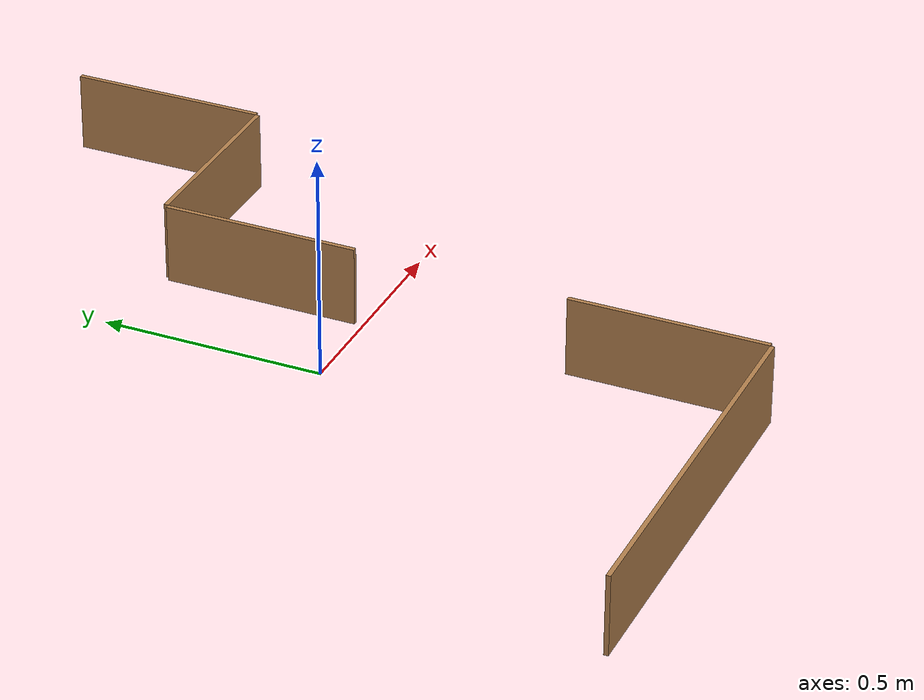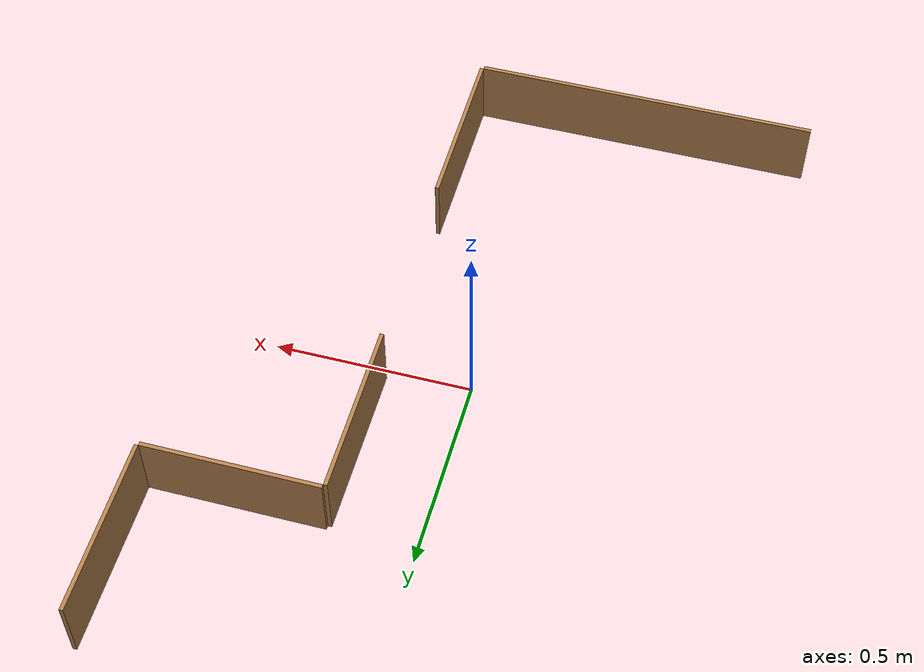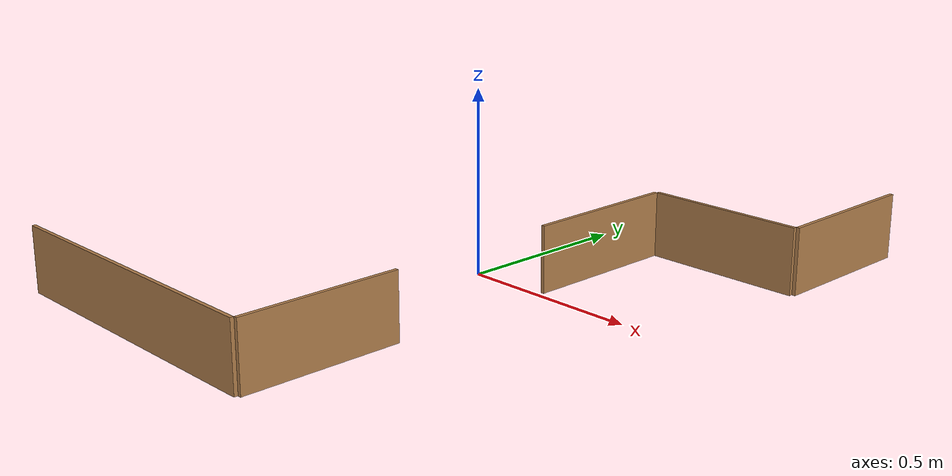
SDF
<?xml version="1.0"?>
<sdf version="1.4">
<model name="task3_room4">
  <static>true</static>
  <link name='room_4'>
    <pose frame=''>0 0 0.09 0 0 0</pose>
    <collision name='long_1coll'>
      <geometry>
        <box>
          <size>0.88 0.01 0.18</size>
        </box>
      </geometry>
      <pose frame=''>-0.23 -0.905 0 0 0 0</pose>
    </collision>
    <visual name='long_1vis'>
      <pose frame=''>-0.23 -0.905 0 0 0 0</pose>
      <geometry>
        <box>
          <size>0.88 0.01 0.18</size>
        </box>
      </geometry>
      <material>
        <script>
          <uri>file://media/materials/scripts/gazebo.material</uri>
          <name>Gazebo/Wood</name>
        </script>
      </material>
    </visual>
    <collision name='short_1coll'>
      <geometry>
        <box>
          <size>0.01 0.44 0.18</size>
        </box>
      </geometry>
      <pose frame=''>0.215 -0.68 0 0 0 0</pose>
    </collision>
    <visual name='short_1vis'>
      <pose frame=''>0.215 -0.68 0 0 0 0</pose>
      <geometry>
        <box>
          <size>0.01 0.44 0.18</size>
        </box>
      </geometry>
      <material>
        <script>
          <uri>file://media/materials/scripts/gazebo.material</uri>
          <name>Gazebo/Wood</name>
        </script>
      </material>
    </visual>
    <collision name='short_2coll'>
      <geometry>
        <box>
          <size>0.01 0.44 0.18</size>
        </box>
      </geometry>
      <pose frame=''>0.215 0.24 0 0 0 0</pose>
    </collision>
    <visual name='short_2vis'>
      <pose frame=''>0.215 0.24 0 0 0 0</pose>
      <geometry>
        <box>
          <size>0.01 0.44 0.18</size>
        </box>
      </geometry>
      <material>
        <script>
          <uri>file://media/materials/scripts/gazebo.material</uri>
          <name>Gazebo/Wood</name>
        </script>
      </material>
    </visual>
    <collision name='short_3coll'>
      <geometry>
        <box>
          <size>0.44 0.01 0.18</size>
        </box>
      </geometry>
      <pose frame=''>0.44 0.465 0 0 0 0</pose>
    </collision>
    <visual name='short_3vis'>
      <pose frame=''>0.44 0.465 0 0 0 0</pose>
      <geometry>
        <box>
          <size>0.44 0.01 0.18</size>
        </box>
      </geometry>
      <material>
        <script>
          <uri>file://media/materials/scripts/gazebo.material</uri>
          <name>Gazebo/Wood</name>
        </script>
      </material>
    </visual>
    <collision name='short_4coll'>
      <geometry>
        <box>
          <size>0.01 0.44 0.18</size>
        </box>
      </geometry>
      <pose frame=''>0.665 0.69 0 0 0 0</pose>
    </collision>
    <visual name='short_4vis'>
      <pose frame=''>0.665 0.69 0 0 0 0</pose>
      <geometry>
        <box>
          <size>0.01 0.44 0.18</size>
        </box>
      </geometry>
      <material>
        <script>
          <uri>file://media/materials/scripts/gazebo.material</uri>
          <name>Gazebo/Wood</name>
        </script>
      </material>
    </visual>
  </link>
</model>
</sdf>
